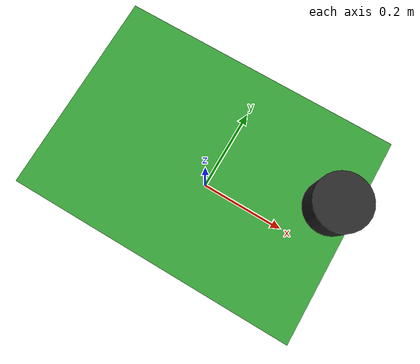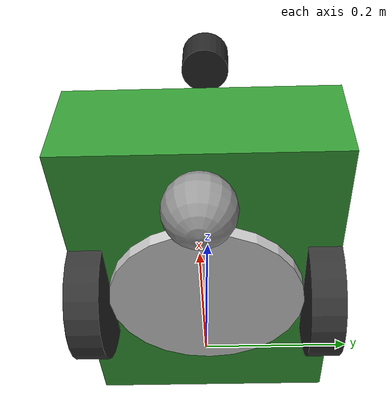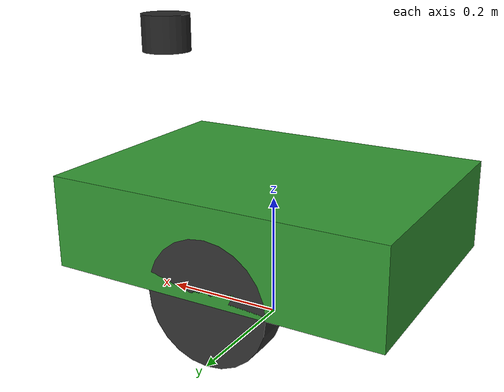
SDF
<?xml version="1.0"?>
<sdf version="1.9">
  <model name="mowgli_mower">
    <pose>0 0 0.10 0 0 0</pose>

    <!-- ==============================================================
         BASE LINK — chassis body
         ============================================================== -->
    <link name="base_link">
      <inertial>
        <mass>8.0</mass>
        <!-- Box inertia: m/12 * (y^2+z^2), etc. for 0.55×0.40×0.15 -->
        <inertia>
          <ixx>0.0558</ixx>
          <ixy>0</ixy>
          <ixz>0</ixz>
          <iyy>0.1171</iyy>
          <iyz>0</iyz>
          <izz>0.1483</izz>
        </inertia>
      </inertial>

      <!-- Chassis visual — green -->
      <visual name="chassis_visual">
        <pose>0 0 0.075 0 0 0</pose>
        <geometry>
          <box><size>0.55 0.40 0.15</size></box>
        </geometry>
        <material>
          <ambient>0.18 0.55 0.18 1</ambient>
          <diffuse>0.20 0.60 0.20 1</diffuse>
          <specular>0.1 0.3 0.1 1</specular>
        </material>
      </visual>

      <!-- Chassis collision -->
      <collision name="chassis_collision">
        <pose>0 0 0.075 0 0 0</pose>
        <geometry>
          <box><size>0.55 0.40 0.15</size></box>
        </geometry>
        <surface>
          <friction>
            <ode><mu>0.6</mu><mu2>0.6</mu2></ode>
          </friction>
        </surface>
      </collision>

      <!-- IMU sensor embedded in base_link -->
      <sensor name="imu_sensor" type="imu">
        <pose>0 0 0.16 0 0 0</pose>
        <always_on>true</always_on>
        <update_rate>100</update_rate>
        <visualize>false</visualize>
        <topic>/imu/data_raw</topic>
        <imu>
          <angular_velocity>
            <x>
              <noise type="gaussian">
                <mean>0.0</mean><stddev>0.009</stddev>
                <bias_mean>0.00075</bias_mean><bias_stddev>0.005</bias_stddev>
              </noise>
            </x>
            <y>
              <noise type="gaussian">
                <mean>0.0</mean><stddev>0.009</stddev>
                <bias_mean>0.00075</bias_mean><bias_stddev>0.005</bias_stddev>
              </noise>
            </y>
            <z>
              <noise type="gaussian">
                <mean>0.0</mean><stddev>0.009</stddev>
                <bias_mean>0.00075</bias_mean><bias_stddev>0.005</bias_stddev>
              </noise>
            </z>
          </angular_velocity>
          <linear_acceleration>
            <x>
              <noise type="gaussian">
                <mean>0.0</mean><stddev>0.021</stddev>
                <bias_mean>0.1</bias_mean><bias_stddev>0.001</bias_stddev>
              </noise>
            </x>
            <y>
              <noise type="gaussian">
                <mean>0.0</mean><stddev>0.021</stddev>
                <bias_mean>0.1</bias_mean><bias_stddev>0.001</bias_stddev>
              </noise>
            </y>
            <z>
              <noise type="gaussian">
                <mean>0.0</mean><stddev>0.021</stddev>
                <bias_mean>0.1</bias_mean><bias_stddev>0.001</bias_stddev>
              </noise>
            </z>
          </linear_acceleration>
          <orientation_reference_frame>
            <localization>GRAV_UP</localization>
          </orientation_reference_frame>
        </imu>
      </sensor>

      <!-- GPS / NavSat sensor -->
      <sensor name="navsat_sensor" type="navsat">
        <pose>0 0 0.18 0 0 0</pose>
        <always_on>true</always_on>
        <update_rate>5</update_rate>
        <topic>/gps/fix</topic>
        <navsat>
          <position_sensing>
            <horizontal>
              <noise type="gaussian">
                <mean>0.0</mean><stddev>0.01</stddev>
              </noise>
            </horizontal>
            <vertical>
              <noise type="gaussian">
                <mean>0.0</mean><stddev>0.02</stddev>
              </noise>
            </vertical>
          </position_sensing>
        </navsat>
      </sensor>
    </link>

    <link name="left_wheel">
      <pose>0 0.175 0 -1.5708 0 0</pose>
      <inertial>
        <mass>0.5</mass>
        <!-- Cylinder with axis along y: ixx=iyy=m/12*(3r^2+h^2), izz=m/2*r^2 -->
        <!-- After -pi/2 rotation (y becomes z in link frame): -->
        <inertia>
          <ixx>0.001250</ixx>
          <ixy>0</ixy>
          <ixz>0</ixz>
          <iyy>0.001250</iyy>
          <iyz>0</iyz>
          <izz>0.002500</izz>
        </inertia>
      </inertial>
      <visual name="visual">
        <geometry>
          <cylinder><radius>0.10</radius><length>0.05</length></cylinder>
        </geometry>
        <material>
          <ambient>0.2 0.2 0.2 1</ambient>
          <diffuse>0.2 0.2 0.2 1</diffuse>
        </material>
      </visual>
      <collision name="collision">
        <geometry>
          <cylinder><radius>0.10</radius><length>0.05</length></cylinder>
        </geometry>
        <surface>
          <friction>
            <ode>
              <mu>1.0</mu>
              <mu2>0.5</mu2>
              <fdir1>0 0 1</fdir1>
              <slip1>0.0</slip1>
              <slip2>0.0</slip2>
            </ode>
            <torsional>
              <ode><slip>0.0</slip></ode>
            </torsional>
          </friction>
          <contact>
            <ode>
              <kp>1000000.0</kp>
              <kd>100.0</kd>
              <max_vel>0.1</max_vel>
              <min_depth>0.001</min_depth>
            </ode>
          </contact>
        </surface>
      </collision>
    </link>

    <joint name="left_wheel_joint" type="revolute">
      <parent>base_link</parent>
      <child>left_wheel</child>
      <axis>
        <xyz>0 0 1</xyz>  <!-- in child (wheel) frame, rotated, this is the spin axis -->
        <dynamics><damping>0.1</damping><friction>0.1</friction></dynamics>
        <limit><lower>-1e+16</lower><upper>1e+16</upper></limit>
      </axis>
    </joint>

    <link name="right_wheel">
      <pose>0 -0.175 0 1.5708 0 0</pose>
      <inertial>
        <mass>0.5</mass>
        <inertia>
          <ixx>0.001250</ixx>
          <ixy>0</ixy>
          <ixz>0</ixz>
          <iyy>0.001250</iyy>
          <iyz>0</iyz>
          <izz>0.002500</izz>
        </inertia>
      </inertial>
      <visual name="visual">
        <geometry>
          <cylinder><radius>0.10</radius><length>0.05</length></cylinder>
        </geometry>
        <material>
          <ambient>0.2 0.2 0.2 1</ambient>
          <diffuse>0.2 0.2 0.2 1</diffuse>
        </material>
      </visual>
      <collision name="collision">
        <geometry>
          <cylinder><radius>0.10</radius><length>0.05</length></cylinder>
        </geometry>
        <surface>
          <friction>
            <ode>
              <mu>1.0</mu>
              <mu2>0.5</mu2>
              <fdir1>0 0 1</fdir1>
              <slip1>0.0</slip1>
              <slip2>0.0</slip2>
            </ode>
            <torsional>
              <ode><slip>0.0</slip></ode>
            </torsional>
          </friction>
          <contact>
            <ode>
              <kp>1000000.0</kp>
              <kd>100.0</kd>
              <max_vel>0.1</max_vel>
              <min_depth>0.001</min_depth>
            </ode>
          </contact>
        </surface>
      </collision>
    </link>

    <joint name="right_wheel_joint" type="revolute">
      <parent>base_link</parent>
      <child>right_wheel</child>
      <axis>
        <xyz>0 0 -1</xyz>
        <dynamics><damping>0.1</damping><friction>0.1</friction></dynamics>
        <limit><lower>-1e+16</lower><upper>1e+16</upper></limit>
      </axis>
    </joint>

    <link name="front_caster">
      <pose>0.225 0 -0.05 0 0 0</pose>
      <inertial>
        <mass>0.2</mass>
        <!-- Solid sphere: I = 2/5 * m * r^2 = 2/5 * 0.2 * 0.0025 -->
        <inertia>
          <ixx>0.0002</ixx>
          <ixy>0</ixy>
          <ixz>0</ixz>
          <iyy>0.0002</iyy>
          <iyz>0</iyz>
          <izz>0.0002</izz>
        </inertia>
      </inertial>
      <visual name="visual">
        <geometry>
          <sphere><radius>0.05</radius></sphere>
        </geometry>
        <material>
          <ambient>0.5 0.5 0.5 1</ambient>
          <diffuse>0.6 0.6 0.6 1</diffuse>
        </material>
      </visual>
      <collision name="collision">
        <geometry>
          <sphere><radius>0.05</radius></sphere>
        </geometry>
        <surface>
          <friction>
            <ode>
              <!-- Very low friction for a freely pivoting caster -->
              <mu>0.01</mu>
              <mu2>0.01</mu2>
            </ode>
          </friction>
          <contact>
            <ode>
              <kp>1000000.0</kp>
              <kd>100.0</kd>
              <max_vel>1.0</max_vel>
              <min_depth>0.001</min_depth>
            </ode>
          </contact>
        </surface>
      </collision>
    </link>

    <joint name="front_caster_joint" type="ball">
      <parent>base_link</parent>
      <child>front_caster</child>
    </joint>

    <link name="blade_link">
      <pose>0 0 -0.01 0 0 0</pose>
      <inertial>
        <mass>0.3</mass>
        <inertia>
          <ixx>0.001688</ixx>
          <ixy>0</ixy>
          <ixz>0</ixz>
          <iyy>0.001688</iyy>
          <iyz>0</iyz>
          <izz>0.003375</izz>
        </inertia>
      </inertial>
      <visual name="visual">
        <geometry>
          <cylinder><radius>0.15</radius><length>0.02</length></cylinder>
        </geometry>
        <material>
          <ambient>0.75 0.75 0.75 1</ambient>
          <diffuse>0.80 0.80 0.80 1</diffuse>
          <specular>0.5 0.5 0.5 1</specular>
        </material>
      </visual>
      <!-- No collision — blade is virtual in simulation -->
    </link>

    <joint name="blade_joint" type="fixed">
      <parent>base_link</parent>
      <child>blade_link</child>
    </joint>

    <link name="laser_link">
      <pose>0.20 0 0.35 0 0 0</pose>
      <inertial>
        <mass>0.18</mass>
        <inertia>
          <ixx>0.0001</ixx><ixy>0</ixy><ixz>0</ixz>
          <iyy>0.0001</iyy><iyz>0</iyz><izz>0.0001</izz>
        </inertia>
      </inertial>
      <visual name="visual">
        <geometry>
          <cylinder><radius>0.04</radius><length>0.06</length></cylinder>
        </geometry>
        <material>
          <ambient>0.15 0.15 0.15 1</ambient>
          <diffuse>0.15 0.15 0.15 1</diffuse>
        </material>
      </visual>
      <collision name="collision">
        <geometry>
          <cylinder><radius>0.04</radius><length>0.06</length></cylinder>
        </geometry>
      </collision>

      <!-- 2-D LiDAR sensor — 360 deg, 720 samples, 10 Hz -->
      <sensor name="lidar_sensor" type="gpu_lidar">
        <always_on>true</always_on>
        <update_rate>10</update_rate>
        <visualize>false</visualize>
        <topic>/scan</topic>
        <lidar>
          <scan>
            <horizontal>
              <samples>720</samples>
              <resolution>1</resolution>
              <min_angle>-3.14159265</min_angle>
              <max_angle>3.14159265</max_angle>
            </horizontal>
            <vertical>
              <samples>1</samples>
              <resolution>1</resolution>
              <min_angle>0</min_angle>
              <max_angle>0</max_angle>
            </vertical>
          </scan>
          <range>
            <min>0.10</min>
            <max>12.0</max>
            <resolution>0.01</resolution>
          </range>
          <noise>
            <type>gaussian</type>
            <mean>0.0</mean>
            <stddev>0.01</stddev>
          </noise>
        </lidar>
      </sensor>
    </link>

    <joint name="laser_joint" type="fixed">
      <parent>base_link</parent>
      <child>laser_link</child>
    </joint>

    <plugin
        filename="gz-sim-diff-drive-system"
        name="gz::sim::systems::DiffDrive">
      <left_joint>left_wheel_joint</left_joint>
      <right_joint>right_wheel_joint</right_joint>
      <wheel_separation>0.35</wheel_separation>
      <wheel_radius>0.10</wheel_radius>
      <odom_publish_frequency>50</odom_publish_frequency>
      <topic>/cmd_vel</topic>
      <odom_topic>/odom</odom_topic>
      <tf_topic>/tf</tf_topic>
      <frame_id>odom</frame_id>
      <child_frame_id>base_link</child_frame_id>
      <min_velocity>-1.0</min_velocity>
      <max_velocity>1.0</max_velocity>
      <min_acceleration>-3.0</min_acceleration>
      <max_acceleration>3.0</max_acceleration>
    </plugin>

    <!-- Joint state publisher — broadcasts wheel joint positions -->
    <plugin
        filename="gz-sim-joint-state-publisher-system"
        name="gz::sim::systems::JointStatePublisher">
      <topic>/joint_states</topic>
      <joint_name>left_wheel_joint</joint_name>
      <joint_name>right_wheel_joint</joint_name>
    </plugin>

  </model>
</sdf>
